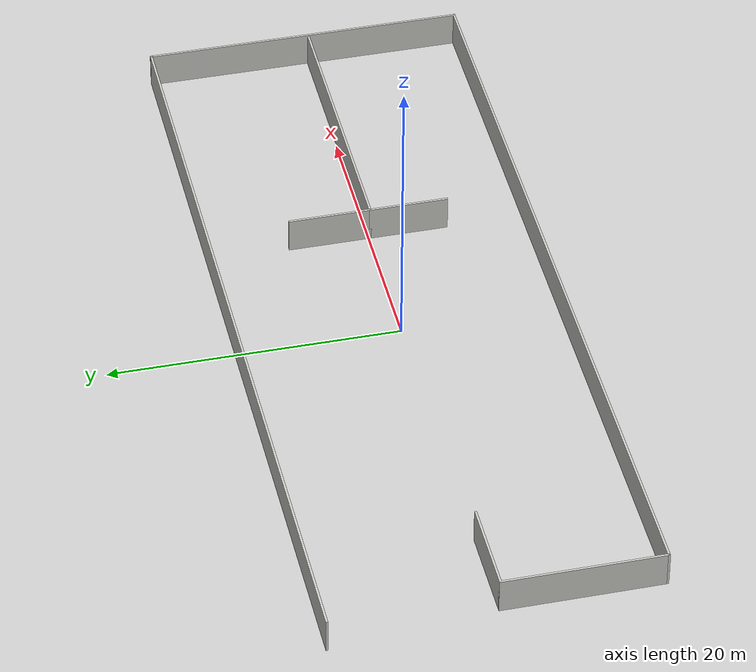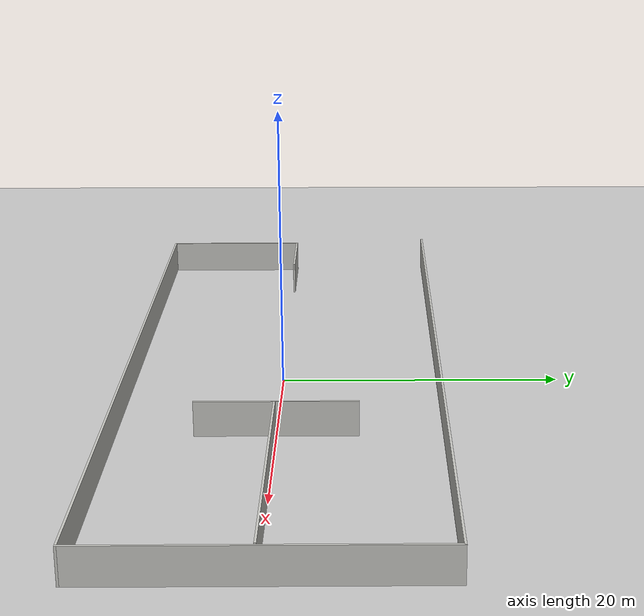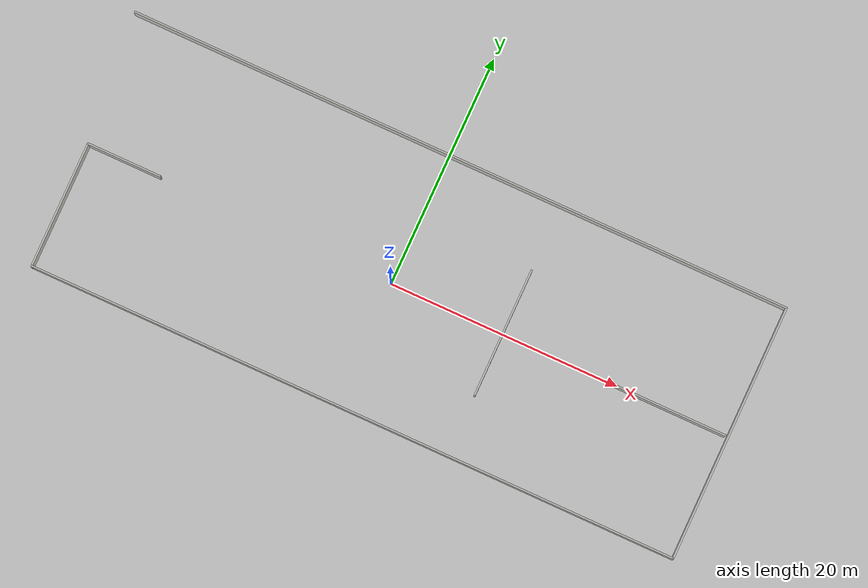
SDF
<sdf version="1.7">
 <world name="default">
  <light name="sun" type="directional">
   <pose>0 0 10 0 -0 0</pose>
   <diffuse>0.8 0.8 0.8 1</diffuse>
   <specular>0.2 0.2 0.2 1</specular>
   <attenuation>
    <range>1000</range>
    <constant>0.9</constant>
    <linear>0.01</linear>
    <quadratic>0.001</quadratic>
   </attenuation>
   <direction>-0.5 0.1 -0.9</direction>
   <spot><inner_angle>0</inner_angle><outer_angle>0</outer_angle><falloff>0</falloff></spot>
  </light>
  <model name="ground_plane">
   <static>1</static>
   <link name="link">
    <collision name="collision">
     <geometry><plane><normal>0 0 1</normal><size>100 100</size></plane></geometry>
     <surface>
      <contact><collide_bitmask>65535</collide_bitmask></contact>
      <friction><ode><mu>100</mu><mu2>50</mu2></ode></friction>
     </surface>
    </collision>
    <visual name="visual">
     <cast_shadows>0</cast_shadows>
     <geometry><plane><normal>0 0 1</normal><size>100 100</size></plane></geometry>
     <material>
      <script><uri>file://media/materials/scripts/gazebo.material</uri><name>Gazebo/Grey</name></script>
     </material>
    </visual>
   </link>
  </model>
  <gravity>0 0 -9.8</gravity>
  <magnetic_field>6e-06 2.3e-05 -4.2e-05</magnetic_field>
  <atmosphere type="adiabatic"/>
  <physics type="ode">
   <max_step_size>0.001</max_step_size>
   <real_time_factor>1</real_time_factor>
   <real_time_update_rate>1000</real_time_update_rate>
  </physics>
  <scene><ambient>0.4 0.4 0.4 1</ambient><background>0.7 0.7 0.7 1</background><shadows>1</shadows></scene>
  <spherical_coordinates>
   <surface_model>EARTH_WGS84</surface_model>
   <latitude_deg>0</latitude_deg>
   <longitude_deg>0</longitude_deg>
   <elevation>0</elevation>
   <heading_deg>0</heading_deg>
  </spherical_coordinates>
  <model name="hosp">
   <pose>0.978122 0.219115 0 0 -0 0</pose>
   <link name="Wall_0">
    <collision name="Wall_0_Collision">
     <geometry><box><size>57.75 0.15 2.5</size></box></geometry>
     <pose>0 0 1.25 0 -0 0</pose>
    </collision>
    <visual name="Wall_0_Visual">
     <pose>0 0 1.25 0 -0 0</pose>
     <geometry><box><size>57.75 0.15 2.5</size></box></geometry>
     <material>
      <script><uri>file://media/materials/scripts/gazebo.material</uri><name>Gazebo/CeilingTiled</name></script>
      <ambient>1 1 1 1</ambient>
     </material>
     <meta><layer>0</layer></meta>
    </visual>
    <pose>-1e-06 11.05 0 0 -0 0</pose>
   </link>
   <link name="Wall_1">
    <collision name="Wall_1_Collision">
     <geometry><box><size>22.25 0.15 2.5</size></box></geometry>
     <pose>0 0 1.25 0 -0 0</pose>
    </collision>
    <visual name="Wall_1_Visual">
     <pose>0 0 1.25 0 -0 0</pose>
     <geometry><box><size>22.25 0.15 2.5</size></box></geometry>
     <material>
      <script><uri>file://media/materials/scripts/gazebo.material</uri><name>Gazebo/CeilingTiled</name></script>
      <ambient>1 1 1 1</ambient>
     </material>
     <meta><layer>0</layer></meta>
    </visual>
    <pose>28.8 0 0 0 -0 -1.5708</pose>
   </link>
   <link name="Wall_11">
    <collision name="Wall_11_Collision">
     <geometry><box><size>5.5 0.15 2.5</size></box></geometry>
     <pose>0 0 1.25 0 -0 0</pose>
    </collision>
    <visual name="Wall_11_Visual">
     <pose>0 0 1.25 0 -0 0</pose>
     <geometry><box><size>5.5 0.15 2.5</size></box></geometry>
     <material>
      <script><uri>file://media/materials/scripts/gazebo.material</uri><name>Gazebo/CeilingTiled</name></script>
      <ambient>1 1 1 1</ambient>
     </material>
     <meta><layer>0</layer></meta>
    </visual>
    <pose>8.90089 -2.99866 0 0 -0 -1.5708</pose>
   </link>
   <link name="Wall_2">
    <collision name="Wall_2_Collision">
     <geometry><box><size>56.75 0.15 2.5</size></box></geometry>
     <pose>0 0 1.25 0 -0 0</pose>
    </collision>
    <visual name="Wall_2_Visual">
     <pose>0 0 1.25 0 -0 0</pose>
     <geometry><box><size>56.75 0.15 2.5</size></box></geometry>
     <material>
      <script><uri>file://media/materials/scripts/gazebo.material</uri><name>Gazebo/CeilingTiled</name></script>
      <ambient>1 1 1 1</ambient>
     </material>
     <meta><layer>0</layer></meta>
    </visual>
    <pose>0.499999 -11.05 0 0 -0 3.14159</pose>
   </link>
   <link name="Wall_3">
    <collision name="Wall_3_Collision">
     <geometry><box><size>11 0.15 2.5</size></box></geometry>
     <pose>0 0 1.25 0 -0 0</pose>
    </collision>
    <visual name="Wall_3_Visual">
     <pose>0 0 1.25 0 -0 0</pose>
     <geometry><box><size>11 0.15 2.5</size></box></geometry>
     <material>
      <script><uri>file://media/materials/scripts/gazebo.material</uri><name>Gazebo/CeilingTiled</name></script>
      <ambient>1 1 1 1</ambient>
     </material>
     <meta><layer>0</layer></meta>
    </visual>
    <pose>-27.8 -5.625 0 0 -0 1.5708</pose>
   </link>
   <link name="Wall_4">
    <collision name="Wall_4_Collision">
     <geometry><box><size>6.5 0.15 2.5</size></box></geometry>
     <pose>0 0 1.25 0 -0 0</pose>
    </collision>
    <visual name="Wall_4_Visual">
     <pose>0 0 1.25 0 -0 0</pose>
     <geometry><box><size>6.5 0.15 2.5</size></box></geometry>
     <material>
      <script><uri>file://media/materials/scripts/gazebo.material</uri><name>Gazebo/CeilingTiled</name></script>
      <ambient>1 1 1 1</ambient>
     </material>
     <meta><layer>0</layer></meta>
    </visual>
    <pose>-24.625 -0.2 0 0 -0 0</pose>
   </link>
   <link name="Wall_7">
    <collision name="Wall_7_Collision">
     <geometry><box><size>19.75 0.15 2.5</size></box></geometry>
     <pose>0 0 1.25 0 -0 0</pose>
    </collision>
    <visual name="Wall_7_Visual">
     <pose>0 0 1.25 0 -0 0</pose>
     <geometry><box><size>19.75 0.15 2.5</size></box></geometry>
     <material>
      <script><uri>file://media/materials/scripts/gazebo.material</uri><name>Gazebo/CeilingTiled</name></script>
      <ambient>1 1 1 1</ambient>
     </material>
     <meta><layer>0</layer></meta>
    </visual>
    <pose>18.7009 -0.323663 0 0 -0 3.14159</pose>
   </link>
   <link name="Wall_8">
    <collision name="Wall_8_Collision">
     <geometry><box><size>5.75 0.15 2.5</size></box></geometry>
     <pose>0 0 1.25 0 -0 0</pose>
    </collision>
    <visual name="Wall_8_Visual">
     <pose>0 0 1.25 0 -0 0</pose>
     <geometry><box><size>5.75 0.15 2.5</size></box></geometry>
     <material>
      <script><uri>file://media/materials/scripts/gazebo.material</uri><name>Gazebo/CeilingTiled</name></script>
      <ambient>1 1 1 1</ambient>
     </material>
     <meta><layer>0</layer></meta>
    </visual>
    <pose>8.90089 2.47634 0 0 -0 1.5708</pose>
   </link>
   <static>1</static>
  </model>
 </world>
</sdf>
